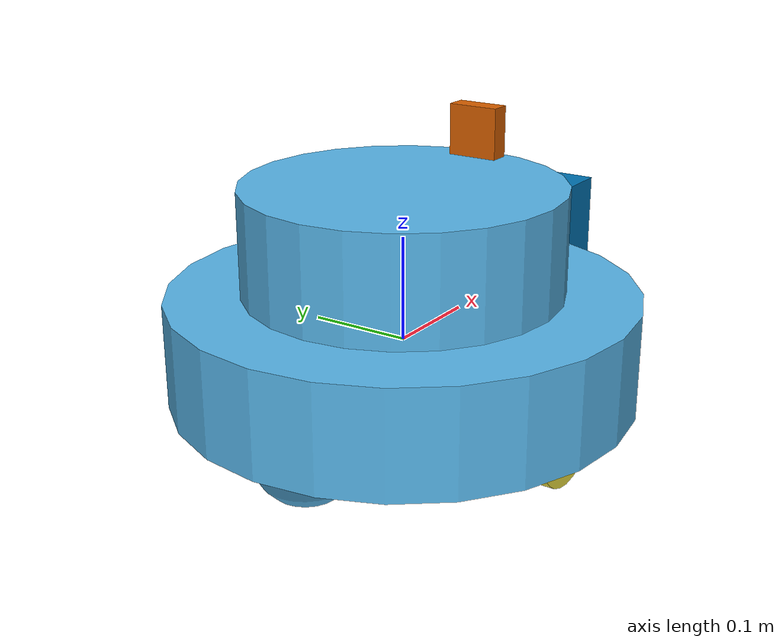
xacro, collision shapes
<?xml version='1.0'?>

<robot name="my_robot" xmlns:xacro="http://www.ros.org/wiki/xacro">

  <xacro:include filename="$(find my_robot)/urdf/extra/materials.xacro" />
  <xacro:include filename="$(find my_robot)/urdf/my_robot.gazebo" />

  <!--
  #################################################
        Global Properties
  #################################################
  -->

  <xacro:property name="chassis_h" value="0.1" />
  <xacro:property name="chassis_r" value="0.22" />

  <xacro:property name="camera_w" value="0.02" />
  <xacro:property name="camera_l" value="0.05" />
  <xacro:property name="camera_h" value="0.05" />

  <xacro:property name="hokuyo_pos_xyz" value="0.24 0.0 0.05" />
  <xacro:property name="hokuyo_pos_rpy" value="0.0 0.0 0.0" />

  <xacro:property name="camera_pos_xyz" value="0.13 0.0 0.175" />
  <xacro:property name="camera_pos_rpy" value="0.0 0.0 0.0" />

  <!--
  #################################################
        Joint Declaration
  #################################################
  -->

  <joint name="robot_footprint_joint" type="fixed">
    <origin xyz="0 0 0" rpy="0 0 0" />
    <parent link="robot_footprint"/>
    <child link="chassis" />
  </joint>

  <joint type="continuous" name="left_wheel_hinge">
    <origin xyz="0 0.15 -0.05" rpy="0 1.5707 1.5707"/>
    <child link="left_wheel"/>
    <parent link="chassis"/>
    <axis xyz="0 0 1" rpy="0 0 0"/>
    <limit effort="10000" velocity="1000"/>
    <dynamics damping="1.0" friction="1.0"/>
  </joint>

  <joint type="continuous" name="right_wheel_hinge">
    <origin xyz="0 -0.15 -0.05" rpy="0 1.5707 1.5707"/>
    <child link="right_wheel"/>
    <parent link="chassis"/>
    <axis xyz="0 0 1" rpy="0 0 0"/>
    <limit effort="10000" velocity="1000"/>
    <dynamics damping="1.0" friction="1.0"/>
  </joint>

  <joint type="fixed" name="hokuyo_joint">
    <origin xyz="${hokuyo_pos_xyz}" rpy="${hokuyo_pos_rpy}"/>
    <child link="hokuyo"/>
    <parent link="chassis"/>
    <axis xyz="0 1 0" rpy="0 0 0"/>
  </joint>

  <joint type="fixed" name="camera_joint">
    <origin xyz="${camera_pos_xyz}" rpy="${camera_pos_rpy}"/>
    <child link="camera"/>
    <parent link="chassis"/>
    <axis xyz="0 1 0" rpy="0 0 0"/>
  </joint>

  <!--
  #################################################
        link = robot_footprint
  #################################################
  -->

  <link name="robot_footprint"></link>

  <!--
  #################################################
        link = chassis
  #################################################
  -->

  <link name='chassis'>
    <pose>0 0 0.1 0 0 0</pose>

    <inertial>
      <mass value="15.0"/>
      <origin xyz="0.0 0 0" rpy=" 0 0 0"/>
      <inertia
          ixx="0.1" ixy="0" ixz="0"
          iyy="0.1" iyz="0"
          izz="0.1"
      />
    </inertial>

    <!-- Part 1 -->

    <collision name='chassis_collision'>
      <origin xyz="0 0 0" rpy=" 0 0 0"/>
      <geometry>
        <cylinder radius="${chassis_r}" length="${chassis_h}" />
      </geometry>
    </collision>

    <visual name='chassis_visual'>
      <origin xyz="0 0 0" rpy=" 0 0 0"/>
      <geometry>
        <cylinder radius="${chassis_r}" length="${chassis_h}" />
      </geometry>
    </visual>

    <!-- Part 2
         For this base, the casters are included as part of the link for stability.
    -->

    <collision name='back_caster_collision'>
      <origin xyz="-0.15 0 -0.05" rpy=" 0 0 0"/>
      <geometry>
        <sphere radius="0.0499"/>
      </geometry>
    </collision>

    <visual name='back_caster_visual'>
      <origin xyz="-0.15 0 -0.05" rpy=" 0 0 0"/>
      <geometry>
        <sphere radius="0.05"/>
      </geometry>
    </visual>

    <!-- Part 3
         For this base, the casters are included as part of the link for stability.
    -->

    <collision name='front_caster_collision'>
      <origin xyz="0.15 0 -0.05" rpy=" 0 0 0"/>
      <geometry>
        <sphere radius="0.0499"/>
      </geometry>
    </collision>

    <visual name='front_caster_visual'>
      <origin xyz="0.15 0 -0.05" rpy=" 0 0 0"/>
      <geometry>
        <sphere radius="0.05"/>
      </geometry>
    </visual>

    <collision name='sensor_holder1_collision'>
      <origin xyz="0.0 0 0.1" rpy=" 0 0 0"/>
      <geometry>
        <cylinder radius="0.15" length="0.1" />
      </geometry>
    </collision>

    <visual name='sensor_holder1_visual'>
      <origin xyz="0.0 0 0.1" rpy=" 0 0 0"/>
      <geometry>
        <cylinder radius="0.15" length="0.1" />
      </geometry>
    </visual>

  </link>

  <!--
  #################################################
        link = left_wheel
  #################################################
  -->

  <link name='left_wheel'>
    <pose>0 0 0 0 0 0</pose>

    <inertial>
      <mass value="5.0"/>
      <origin xyz="0.0 0 0" rpy=" 0 0 0"/>
      <inertia
          ixx="0.1" ixy="0" ixz="0"
          iyy="0.1" iyz="0"
          izz="0.1"
      />
    </inertial>

    <collision name='left_wheel_collision'>
      <origin xyz="0 0 0" rpy=" 0 0 0"/>
      <geometry>
        <cylinder radius="0.05" length="0.05" />
      </geometry>
    </collision>

    <visual name='left_wheel_visual'>
      <origin xyz="0 0 0" rpy="-1.57 0 0"/>
      <geometry>
        <mesh filename="package://my_robot/meshes/wheel.stl" scale="0.0015 0.0015 0.0015" />
      </geometry>
    </visual>
  </link>

  <!--
  #################################################
        link = right_wheel
  #################################################
  -->

  <link name='right_wheel'>
    <pose>0 0 0 0 0 0</pose>

    <inertial>
      <mass value="5.0"/>
      <origin xyz="0.0 0 0" rpy=" 0 0 0"/>
      <inertia
          ixx="0.1" ixy="0" ixz="0"
          iyy="0.1" iyz="0"
          izz="0.1"
      />
    </inertial>

    <collision name='right_wheel_collision'>
      <origin xyz="0 0 0" rpy=" 0 0 0"/>
      <geometry>
        <cylinder radius="0.05" length="0.05" />
      </geometry>
    </collision>

    <visual name='right_wheel_visual'>
      <origin xyz="0 0 0" rpy="1.57 0 0"/>
      <geometry>
        <mesh filename="package://my_robot/meshes/wheel.stl" scale="0.0015 0.0015 0.0015" />
      </geometry>
    </visual>
  </link>

  <!--
  #################################################
        link = hokuyo
  #################################################
  -->

  <link name='hokuyo'>
    <pose>0 0 0 0 0 0</pose>

    <inertial>
      <mass value="1e-5"/>
      <origin xyz="0.0 0 0" rpy=" 0 0 0"/>
      <inertia
          ixx="0.1" ixy="0" ixz="0"
          iyy="0.1" iyz="0"
          izz="0.1"
      />
    </inertial>

    <collision>
      <origin xyz="0 0 0" rpy=" 0 0 0"/>
      <geometry>
        <box size="0.1 0.1 0.1" />
      </geometry>
    </collision>

    <visual>
      <origin xyz="0 0 0" rpy=" 0 0 0"/>
      <geometry>
        <mesh filename="package://my_robot/meshes/hokuyo.dae" />
      </geometry>
    </visual>
  </link>

  <!--
  #################################################
        link = camera
  #################################################
  -->

  <link name='camera'>
    <pose>0 0 0 0 0 0</pose>

    <inertial>
      <mass value="1e-5"/>
      <origin xyz="0.0 0 0" rpy=" 0 0 0"/>
      <inertia
          ixx="0.1" ixy="0" ixz="0"
          iyy="0.1" iyz="0"
          izz="0.1"
      />
    </inertial>

    <collision>
      <origin xyz="0 0 0" rpy=" 0 0 0"/>
      <geometry>
        <box size="${camera_w} ${camera_l} ${camera_h}" />
      </geometry>
    </collision>

    <visual>
      <origin xyz="0 0 0" rpy=" 0 0 0"/>
      <geometry>
        <box size="${camera_w} ${camera_l} ${camera_h}" />
      </geometry>
    </visual>
  </link>

</robot>
